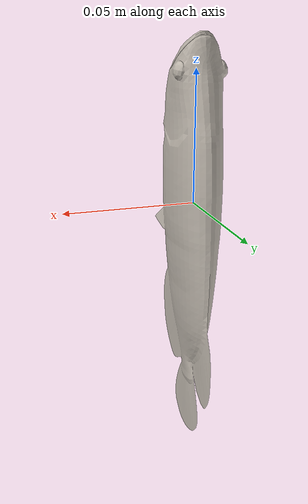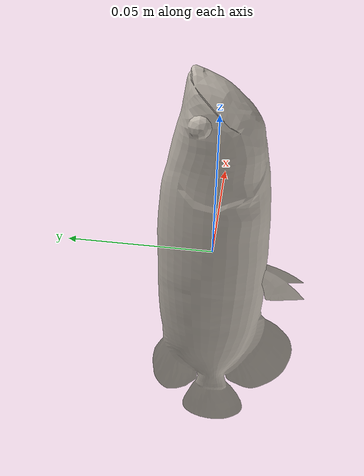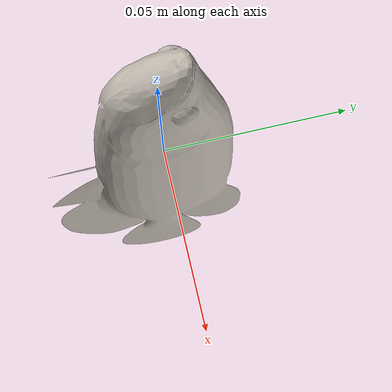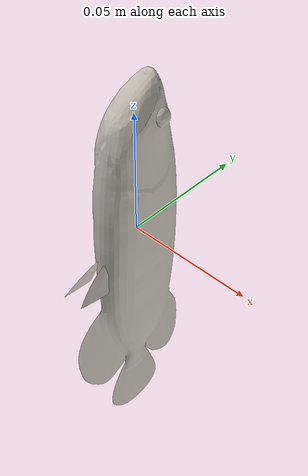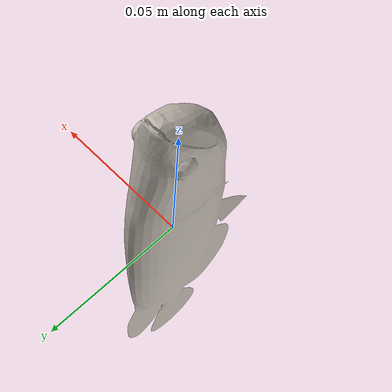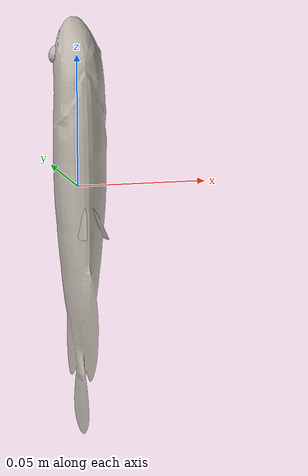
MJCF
<mujoco model="obj_fish0">
  <asset>
    <mesh name="fish0_mesh" file="asset/obj_fish0/fish0_new.obj" scale="0.4 0.4 0.4"/>
    <texture name="fish0_tex" type="2d" file="asset/obj_fish0/fish0.png" />
    <material name="fish0_mat" texture="fish0_tex" specular="0.3" />
  </asset>

  <worldbody>
    <body name="fish0_obj" euler="0 90 0">
        <freejoint/>
        <geom type="mesh" mesh="fish0_mesh" material="fish0_mat" mass="0.2" friction="1 0.1 0.1" margin="0.01" group="2"/>
    </body>
  </worldbody>
</mujoco>
